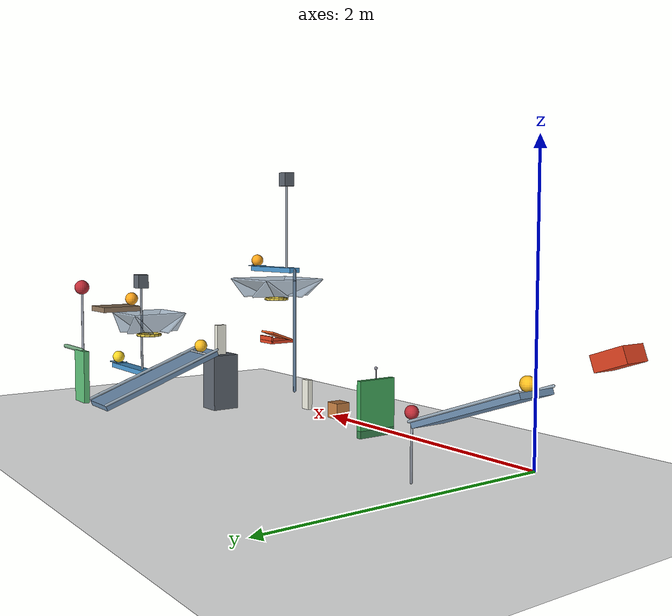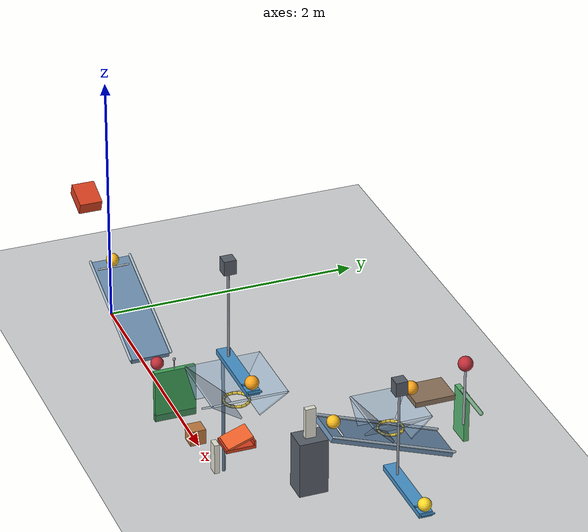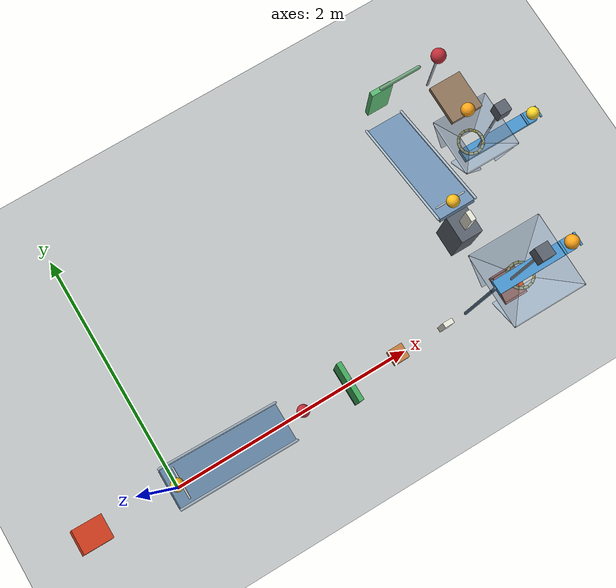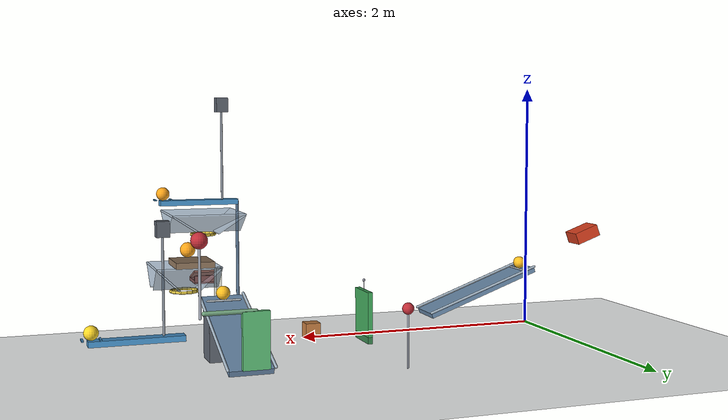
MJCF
<mujoco model="passive_chain_reaction">
  <compiler angle="degree" autolimits="true"/>
  <option timestep="0.002" gravity="0 0 -9.81" integrator="implicitfast" solver="Newton" iterations="100" cone="elliptic"/>
  <size njmax="4000" nconmax="1000"/>
  <visual>
    <global azimuth="120" elevation="-25"/>
    <headlight ambient="0.35 0.35 0.35" diffuse="0.7 0.7 0.7" specular="0.2 0.2 0.2"/>
  </visual>

  <!-- Contact damping ratio 0.6901 targets approximately 0.05 restitution. -->
  <!-- Collision bit 1 is for floors/supports; bit 2 is for mechanisms. -->
  <!-- Free objects use both bits. Hinged mechanisms do not hit the floor. -->

  <worldbody>
    <light name="main_light" pos="2 -3 6" dir="0 0.3 -1" directional="true"/>
    <camera name="overview" pos="2 -6 4" xyaxes="1 0 0 0 0.447214 0.894427" fovy="48"/>
    <geom name="floor" type="plane" size="6 6 0.1" friction="0.68 0.005 0.001" condim="6" solref="0.006 0.6901" contype="1" conaffinity="1" rgba="0.22 0.25 0.28 1"/>

    <!-- Cart1's slide slopes down 20 degrees. Gravity permits travel beyond
         the 0.40 m undamped excursion of a horizontal compressed spring. -->
    <body name="cart1" pos="-0.556111 0 0.747637" quat="0.984807753 0 0.173648178 0">
      <joint name="cart1_slide" type="slide" axis="1 0 0" damping="0.20" stiffness="18" springref="0.20" range="0 0.55" solreflimit="0.006 1"/>
      <geom name="cart1_box" type="box" size="0.11 0.09 0.05" mass="0.50" friction="0.68 0.005 0.001" condim="6" solref="0.006 0.6901" contype="3" conaffinity="3" rgba="0.85 0.25 0.12 1"/>
    </body>

    <body name="ball1" pos="0.064086 0 0.521904">
      <freejoint name="ball1_free"/>
      <geom name="ball1_sphere" type="sphere" size="0.05" mass="0.20" friction="0.68 0.005 0.001" condim="6" solref="0.006 0.6901" contype="3" conaffinity="3" rgba="1 0.75 0.12 1"/>
    </body>

    <!-- Ramp top endpoints: (0,0,0.492020) and (0.939693,0,0.150000). -->
    <body name="ramp1" pos="0.463006 0 0.302216" quat="0.984807753 0 0.173648178 0">
      <geom name="ramp1_deck" type="box" size="0.50 0.15 0.02" friction="0.68 0.005 0.001" condim="6" solref="0.006 0.6901" contype="1" conaffinity="1" rgba="0.42 0.55 0.68 1"/>
      <geom name="ramp1_left_rail" type="capsule" fromto="-0.50 -0.16 0.03 0.50 -0.16 0.03" size="0.01" friction="0.68 0.005 0.001" condim="6" solref="0.006 0.6901" contype="1" conaffinity="1" rgba="0.65 0.72 0.78 1"/>
      <geom name="ramp1_right_rail" type="capsule" fromto="-0.50 0.16 0.03 0.50 0.16 0.03" size="0.01" friction="0.68 0.005 0.001" condim="6" solref="0.006 0.6901" contype="1" conaffinity="1" rgba="0.65 0.72 0.78 1"/>
      <geom name="ramp1_start_lip" type="capsule" fromto="-0.41 -0.12 0.03 -0.41 0.12 0.03" size="0.007" friction="0.68 0.005 0.001" condim="6" solref="0.006 0.6901" contype="1" conaffinity="1" rgba="0.75 0.78 0.80 1"/>
    </body>

    <!-- Inverted rigid pendulum: disturbance releases gravitational energy. -->
    <body name="pendulum1" pos="1.089693 0 -0.32">
      <joint name="pendulum1_hinge" type="hinge" axis="0 1 0" damping="0.04" frictionloss="0.001" range="0 40" solreflimit="0.006 1"/>
      <geom name="pendulum1_rod" type="capsule" fromto="0 0 0 0 0 0.50" size="0.009" mass="0.05" friction="0.68 0.005 0.001" condim="6" solref="0.006 0.6901" contype="2" conaffinity="2" rgba="0.65 0.67 0.72 1"/>
      <geom name="pendulum1_bob" type="sphere" pos="0 0 0.50" size="0.05" mass="0.30" friction="0.68 0.005 0.001" condim="6" solref="0.006 0.6901" contype="2" conaffinity="2" rgba="0.75 0.18 0.22 1"/>
    </body>

    <body name="door1" pos="1.48 0 -0.06">
      <joint name="door1_hinge" type="hinge" axis="0 1 0" damping="0.04" frictionloss="0.01" range="0 70" solreflimit="0.006 1"/>
      <geom name="door1_panel" type="box" pos="0 0 0.21" size="0.02 0.16 0.21" mass="0.45" friction="0.68 0.005 0.001" condim="6" solref="0.006 0.6901" contype="2" conaffinity="2" rgba="0.25 0.65 0.35 1"/>
      <site name="door1_spring_attachment" pos="0 0 0.20" size="0.004" rgba="0.9 0.9 0.9 1"/>
    </body>

    <body name="door1_spring_anchor" pos="1.48 0 0.44">
      <site name="door1_spring_fixed" pos="0 0 0" size="0.004" rgba="0.9 0.9 0.9 1"/>
      <geom name="door1_spring_anchor_visual" type="sphere" size="0.012" contype="0" conaffinity="0" rgba="0.55 0.55 0.60 1"/>
    </body>

    <body name="block1" pos="1.93 0 0.06">
      <freejoint name="block1_free"/>
      <geom name="block1_cube" type="box" size="0.06 0.06 0.06" mass="0.35" friction="0.68 0.005 0.001" condim="6" solref="0.006 0.6901" contype="3" conaffinity="3" rgba="0.75 0.48 0.25 1"/>
    </body>

    <body name="domino1" pos="2.35 0 0.12">
      <freejoint name="domino1_free"/>
      <geom name="domino1_box" type="box" size="0.04 0.02 0.12" mass="0.25" friction="0.68 0.005 0.001" condim="6" solref="0.006 0.6901" contype="3" conaffinity="3" rgba="0.90 0.90 0.85 1"/>
    </body>

    <!-- The elevated lever has a low striker at its left end and a balanced
         over-centre weight. Its complete moving assembly has mass 0.50 kg. -->
    <body name="lever1" pos="2.83 0 1.12">
      <inertial pos="-0.11 0 0.45" mass="0.50" diaginertia="0.070 0.078 0.010"/>
      <joint name="lever1_hinge" type="hinge" axis="0 -1 0" damping="0.04" frictionloss="0.03" range="0 45" solreflimit="0.006 1"/>
      <geom name="lever1_beam" type="box" size="0.30 0.05 0.02" friction="0.68 0.005 0.001" condim="6" solref="0.006 0.6901" contype="2" conaffinity="2" rgba="0.28 0.58 0.80 1"/>
      <geom name="lever1_low_striker" type="capsule" fromto="-0.30 0 -1.00 -0.30 0 0" size="0.012" friction="0.68 0.005 0.001" condim="6" solref="0.006 0.6901" contype="2" conaffinity="2" rgba="0.35 0.45 0.55 1"/>
      <geom name="lever1_weight_stem" type="capsule" fromto="-0.183333 0 0 -0.183333 0 0.75" size="0.009" contype="0" conaffinity="0" rgba="0.55 0.58 0.62 1"/>
      <geom name="lever1_balance_weight" type="box" pos="-0.183333 0 0.75" size="0.045 0.045 0.055" contype="0" conaffinity="0" rgba="0.35 0.38 0.42 1"/>
      <geom name="lever1_cup_left" type="box" pos="0.215 0 0.024" size="0.0075 0.05 0.004" friction="0.68 0.005 0.001" condim="6" solref="0.006 0.6901" contype="2" conaffinity="2" rgba="0.28 0.58 0.80 1"/>
      <geom name="lever1_cup_right" type="box" pos="0.335 0 0.024" size="0.0075 0.05 0.004" friction="0.68 0.005 0.001" condim="6" solref="0.006 0.6901" contype="2" conaffinity="2" rgba="0.28 0.58 0.80 1"/>
    </body>

    <body name="ball2" pos="3.105 0 1.19">
      <freejoint name="ball2_free"/>
      <geom name="ball2_sphere" type="sphere" size="0.05" mass="0.20" friction="0.68 0.005 0.001" condim="6" solref="0.006 0.6901" contype="3" conaffinity="3" rgba="1 0.65 0.10 1"/>
    </body>

    <!-- Passive catch funnel; its exit is above the horizontal ring. -->
    <body name="ball2_funnel" pos="2.80 0 0.97">
      <geom name="ball2_funnel_px" type="box" pos="0.1725 0 0" euler="0 -33.073 0" size="0.12828 0.28 0.006" friction="0.68 0.005 0.001" condim="6" solref="0.006 0.6901" contype="1" conaffinity="1" rgba="0.48 0.58 0.68 0.65"/>
      <geom name="ball2_funnel_nx" type="box" pos="-0.1725 0 0" euler="0 33.073 0" size="0.12828 0.28 0.006" friction="0.68 0.005 0.001" condim="6" solref="0.006 0.6901" contype="1" conaffinity="1" rgba="0.48 0.58 0.68 0.65"/>
      <geom name="ball2_funnel_py" type="box" pos="0 0.1725 0" euler="33.073 0 0" size="0.28 0.12828 0.006" friction="0.68 0.005 0.001" condim="6" solref="0.006 0.6901" contype="1" conaffinity="1" rgba="0.48 0.58 0.68 0.65"/>
      <geom name="ball2_funnel_ny" type="box" pos="0 -0.1725 0" euler="-33.073 0 0" size="0.28 0.12828 0.006" friction="0.68 0.005 0.001" condim="6" solref="0.006 0.6901" contype="1" conaffinity="1" rgba="0.48 0.58 0.68 0.65"/>
    </body>

    <!-- Sixteen capsule segments have an inner apothem of 0.08 m. -->
    <body name="ring1" pos="2.80 0 0.87">
      <geom name="ring1_s00" type="capsule" fromto="0.091765 0 0 0.084780 0.035116 0" size="0.01" friction="0.68 0.005 0.001" condim="6" solref="0.006 0.6901" contype="1" conaffinity="1" rgba="0.85 0.75 0.25 1"/>
      <geom name="ring1_s01" type="capsule" fromto="0.084780 0.035116 0 0.064888 0.064888 0" size="0.01" friction="0.68 0.005 0.001" condim="6" solref="0.006 0.6901" contype="1" conaffinity="1" rgba="0.85 0.75 0.25 1"/>
      <geom name="ring1_s02" type="capsule" fromto="0.064888 0.064888 0 0.035116 0.084780 0" size="0.01" friction="0.68 0.005 0.001" condim="6" solref="0.006 0.6901" contype="1" conaffinity="1" rgba="0.85 0.75 0.25 1"/>
      <geom name="ring1_s03" type="capsule" fromto="0.035116 0.084780 0 0 0.091765 0" size="0.01" friction="0.68 0.005 0.001" condim="6" solref="0.006 0.6901" contype="1" conaffinity="1" rgba="0.85 0.75 0.25 1"/>
      <geom name="ring1_s04" type="capsule" fromto="0 0.091765 0 -0.035116 0.084780 0" size="0.01" friction="0.68 0.005 0.001" condim="6" solref="0.006 0.6901" contype="1" conaffinity="1" rgba="0.85 0.75 0.25 1"/>
      <geom name="ring1_s05" type="capsule" fromto="-0.035116 0.084780 0 -0.064888 0.064888 0" size="0.01" friction="0.68 0.005 0.001" condim="6" solref="0.006 0.6901" contype="1" conaffinity="1" rgba="0.85 0.75 0.25 1"/>
      <geom name="ring1_s06" type="capsule" fromto="-0.064888 0.064888 0 -0.084780 0.035116 0" size="0.01" friction="0.68 0.005 0.001" condim="6" solref="0.006 0.6901" contype="1" conaffinity="1" rgba="0.85 0.75 0.25 1"/>
      <geom name="ring1_s07" type="capsule" fromto="-0.084780 0.035116 0 -0.091765 0 0" size="0.01" friction="0.68 0.005 0.001" condim="6" solref="0.006 0.6901" contype="1" conaffinity="1" rgba="0.85 0.75 0.25 1"/>
      <geom name="ring1_s08" type="capsule" fromto="-0.091765 0 0 -0.084780 -0.035116 0" size="0.01" friction="0.68 0.005 0.001" condim="6" solref="0.006 0.6901" contype="1" conaffinity="1" rgba="0.85 0.75 0.25 1"/>
      <geom name="ring1_s09" type="capsule" fromto="-0.084780 -0.035116 0 -0.064888 -0.064888 0" size="0.01" friction="0.68 0.005 0.001" condim="6" solref="0.006 0.6901" contype="1" conaffinity="1" rgba="0.85 0.75 0.25 1"/>
      <geom name="ring1_s10" type="capsule" fromto="-0.064888 -0.064888 0 -0.035116 -0.084780 0" size="0.01" friction="0.68 0.005 0.001" condim="6" solref="0.006 0.6901" contype="1" conaffinity="1" rgba="0.85 0.75 0.25 1"/>
      <geom name="ring1_s11" type="capsule" fromto="-0.035116 -0.084780 0 0 -0.091765 0" size="0.01" friction="0.68 0.005 0.001" condim="6" solref="0.006 0.6901" contype="1" conaffinity="1" rgba="0.85 0.75 0.25 1"/>
      <geom name="ring1_s12" type="capsule" fromto="0 -0.091765 0 0.035116 -0.084780 0" size="0.01" friction="0.68 0.005 0.001" condim="6" solref="0.006 0.6901" contype="1" conaffinity="1" rgba="0.85 0.75 0.25 1"/>
      <geom name="ring1_s13" type="capsule" fromto="0.035116 -0.084780 0 0.064888 -0.064888 0" size="0.01" friction="0.68 0.005 0.001" condim="6" solref="0.006 0.6901" contype="1" conaffinity="1" rgba="0.85 0.75 0.25 1"/>
      <geom name="ring1_s14" type="capsule" fromto="0.064888 -0.064888 0 0.084780 -0.035116 0" size="0.01" friction="0.68 0.005 0.001" condim="6" solref="0.006 0.6901" contype="1" conaffinity="1" rgba="0.85 0.75 0.25 1"/>
      <geom name="ring1_s15" type="capsule" fromto="0.084780 -0.035116 0 0.091765 0 0" size="0.01" friction="0.68 0.005 0.001" condim="6" solref="0.006 0.6901" contype="1" conaffinity="1" rgba="0.85 0.75 0.25 1"/>
    </body>

    <!-- The inclined cart top converts the vertical impact into +y motion.
         Its overall envelope is 0.22 x 0.18 x 0.10 m in local coordinates. -->
    <body name="cart2" pos="2.80 0 0.55006" quat="0.707106781 0 0 0.707106781">
      <inertial pos="0 0 0" mass="0.50" diaginertia="0.001767 0.002433 0.003367"/>
      <joint name="cart2_slide" type="slide" axis="1 0 0" damping="0.20" range="0 0.46" solreflimit="0.006 1"/>
      <geom name="cart2_base" type="box" pos="0 0 -0.0375" size="0.11 0.09 0.0125" friction="0.68 0.005 0.001" condim="6" solref="0.006 0.6901" contype="3" conaffinity="3" rgba="0.85 0.25 0.12 1"/>
      <geom name="cart2_impact_top" type="box" pos="0 0 0.00875" euler="0 -20 0" size="0.10 0.09 0.0075" friction="0.68 0.005 0.001" condim="6" solref="0.006 0.6901" contype="3" conaffinity="3" rgba="0.95 0.38 0.16 1"/>
      <geom name="cart2_front" type="box" pos="0.1025 0 -0.015" size="0.0075 0.09 0.025" friction="0.68 0.005 0.001" condim="6" solref="0.006 0.6901" contype="3" conaffinity="3" rgba="0.85 0.25 0.12 1"/>
    </body>

    <body name="domino2_support" pos="2.80 0.55 0.22">
      <geom name="domino2_support_box" type="box" size="0.09 0.11 0.22" friction="0.68 0.005 0.001" condim="6" solref="0.006 0.6901" contype="1" conaffinity="1" rgba="0.35 0.38 0.42 1"/>
    </body>

    <body name="domino2" pos="2.80 0.55 0.56" quat="0.707106781 0 0 0.707106781">
      <freejoint name="domino2_free"/>
      <geom name="domino2_box" type="box" size="0.04 0.02 0.12" mass="0.25" friction="0.68 0.005 0.001" condim="6" solref="0.006 0.6901" contype="3" conaffinity="3" rgba="0.90 0.90 0.85 1"/>
    </body>

    <body name="ball3" pos="2.80 0.73 0.521904">
      <freejoint name="ball3_free"/>
      <geom name="ball3_sphere" type="sphere" size="0.05" mass="0.20" friction="0.68 0.005 0.001" condim="6" solref="0.006 0.6901" contype="3" conaffinity="3" rgba="1 0.75 0.12 1"/>
    </body>

    <body name="ramp2" pos="2.80 1.128920 0.302216" quat="0.696364240 -0.122787804 0.122787804 0.696364240">
      <geom name="ramp2_deck" type="box" size="0.50 0.15 0.02" friction="0.68 0.005 0.001" condim="6" solref="0.006 0.6901" contype="1" conaffinity="1" rgba="0.42 0.55 0.68 1"/>
      <geom name="ramp2_left_rail" type="capsule" fromto="-0.50 -0.16 0.03 0.50 -0.16 0.03" size="0.01" friction="0.68 0.005 0.001" condim="6" solref="0.006 0.6901" contype="1" conaffinity="1" rgba="0.65 0.72 0.78 1"/>
      <geom name="ramp2_right_rail" type="capsule" fromto="-0.50 0.16 0.03 0.50 0.16 0.03" size="0.01" friction="0.68 0.005 0.001" condim="6" solref="0.006 0.6901" contype="1" conaffinity="1" rgba="0.65 0.72 0.78 1"/>
      <geom name="ramp2_start_lip" type="capsule" fromto="-0.41 -0.12 0.03 -0.41 0.12 0.03" size="0.007" friction="0.68 0.005 0.001" condim="6" solref="0.006 0.6901" contype="1" conaffinity="1" rgba="0.75 0.78 0.80 1"/>
    </body>

    <body name="flap1" pos="2.80 1.725607 0.37">
      <inertial pos="0 0 0.035" mass="0.28" diaginertia="0.00345 0.00415 0.00080"/>
      <joint name="flap1_hinge" type="hinge" axis="1 0 0" damping="0.04" frictionloss="0.005" range="0 60" solreflimit="0.006 1"/>
      <geom name="flap1_panel" type="box" size="0.09 0.02 0.19" friction="0.68 0.005 0.001" condim="6" solref="0.006 0.6901" contype="2" conaffinity="2" rgba="0.35 0.72 0.45 1"/>
      <geom name="flap1_lateral_striker" type="capsule" fromto="0 0 0.19 0.33 0 0.19" size="0.015" friction="0.68 0.005 0.001" condim="6" solref="0.006 0.6901" contype="2" conaffinity="2" rgba="0.45 0.65 0.50 1"/>
    </body>

    <body name="pendulum2" pos="3.13 1.59 0.505995">
      <joint name="pendulum2_hinge" type="hinge" axis="1 0 0" damping="0.04" frictionloss="0.001" range="0 38" solreflimit="0.006 1"/>
      <geom name="pendulum2_rod" type="capsule" fromto="0 0 0 0 0 0.50" size="0.009" mass="0.05" friction="0.68 0.005 0.001" condim="6" solref="0.006 0.6901" contype="2" conaffinity="2" rgba="0.65 0.67 0.72 1"/>
      <geom name="pendulum2_bob" type="sphere" pos="0 0 0.50" size="0.055" mass="0.30" friction="0.68 0.005 0.001" condim="6" solref="0.006 0.6901" contype="2" conaffinity="2" rgba="0.75 0.18 0.22 1"/>
    </body>

    <body name="shelf1" pos="3.13 1.312169 0.83">
      <geom name="shelf1_deck" type="box" size="0.125 0.15 0.02" friction="0.68 0.005 0.001" condim="6" solref="0.006 0.6901" contype="1" conaffinity="1" rgba="0.55 0.45 0.35 1"/>
    </body>

    <body name="ball4" pos="3.13 1.177169 0.90">
      <freejoint name="ball4_free"/>
      <geom name="ball4_sphere" type="sphere" size="0.05" mass="0.20" friction="0.68 0.005 0.001" condim="6" solref="0.006 0.6901" contype="3" conaffinity="3" rgba="1 0.65 0.10 1"/>
    </body>

    <body name="ball4_funnel" pos="3.13 1.027169 0.705">
      <geom name="ball4_funnel_px" type="box" pos="0.1425 0 0" euler="0 -44.061 0" size="0.10785 0.22 0.006" friction="0.68 0.005 0.001" condim="6" solref="0.006 0.6901" contype="1" conaffinity="1" rgba="0.48 0.58 0.68 0.65"/>
      <geom name="ball4_funnel_nx" type="box" pos="-0.1425 0 0" euler="0 44.061 0" size="0.10785 0.22 0.006" friction="0.68 0.005 0.001" condim="6" solref="0.006 0.6901" contype="1" conaffinity="1" rgba="0.48 0.58 0.68 0.65"/>
      <geom name="ball4_funnel_py" type="box" pos="0 0.1425 0" euler="44.061 0 0" size="0.22 0.10785 0.006" friction="0.68 0.005 0.001" condim="6" solref="0.006 0.6901" contype="1" conaffinity="1" rgba="0.48 0.58 0.68 0.65"/>
      <geom name="ball4_funnel_ny" type="box" pos="0 -0.1425 0" euler="-44.061 0 0" size="0.22 0.10785 0.006" friction="0.68 0.005 0.001" condim="6" solref="0.006 0.6901" contype="1" conaffinity="1" rgba="0.48 0.58 0.68 0.65"/>
    </body>

    <body name="ring2" pos="3.13 1.027169 0.60">
      <geom name="ring2_s00" type="capsule" fromto="0.091765 0 0 0.084780 0.035116 0" size="0.01" friction="0.68 0.005 0.001" condim="6" solref="0.006 0.6901" contype="1" conaffinity="1" rgba="0.85 0.75 0.25 1"/>
      <geom name="ring2_s01" type="capsule" fromto="0.084780 0.035116 0 0.064888 0.064888 0" size="0.01" friction="0.68 0.005 0.001" condim="6" solref="0.006 0.6901" contype="1" conaffinity="1" rgba="0.85 0.75 0.25 1"/>
      <geom name="ring2_s02" type="capsule" fromto="0.064888 0.064888 0 0.035116 0.084780 0" size="0.01" friction="0.68 0.005 0.001" condim="6" solref="0.006 0.6901" contype="1" conaffinity="1" rgba="0.85 0.75 0.25 1"/>
      <geom name="ring2_s03" type="capsule" fromto="0.035116 0.084780 0 0 0.091765 0" size="0.01" friction="0.68 0.005 0.001" condim="6" solref="0.006 0.6901" contype="1" conaffinity="1" rgba="0.85 0.75 0.25 1"/>
      <geom name="ring2_s04" type="capsule" fromto="0 0.091765 0 -0.035116 0.084780 0" size="0.01" friction="0.68 0.005 0.001" condim="6" solref="0.006 0.6901" contype="1" conaffinity="1" rgba="0.85 0.75 0.25 1"/>
      <geom name="ring2_s05" type="capsule" fromto="-0.035116 0.084780 0 -0.064888 0.064888 0" size="0.01" friction="0.68 0.005 0.001" condim="6" solref="0.006 0.6901" contype="1" conaffinity="1" rgba="0.85 0.75 0.25 1"/>
      <geom name="ring2_s06" type="capsule" fromto="-0.064888 0.064888 0 -0.084780 0.035116 0" size="0.01" friction="0.68 0.005 0.001" condim="6" solref="0.006 0.6901" contype="1" conaffinity="1" rgba="0.85 0.75 0.25 1"/>
      <geom name="ring2_s07" type="capsule" fromto="-0.084780 0.035116 0 -0.091765 0 0" size="0.01" friction="0.68 0.005 0.001" condim="6" solref="0.006 0.6901" contype="1" conaffinity="1" rgba="0.85 0.75 0.25 1"/>
      <geom name="ring2_s08" type="capsule" fromto="-0.091765 0 0 -0.084780 -0.035116 0" size="0.01" friction="0.68 0.005 0.001" condim="6" solref="0.006 0.6901" contype="1" conaffinity="1" rgba="0.85 0.75 0.25 1"/>
      <geom name="ring2_s09" type="capsule" fromto="-0.084780 -0.035116 0 -0.064888 -0.064888 0" size="0.01" friction="0.68 0.005 0.001" condim="6" solref="0.006 0.6901" contype="1" conaffinity="1" rgba="0.85 0.75 0.25 1"/>
      <geom name="ring2_s10" type="capsule" fromto="-0.064888 -0.064888 0 -0.035116 -0.084780 0" size="0.01" friction="0.68 0.005 0.001" condim="6" solref="0.006 0.6901" contype="1" conaffinity="1" rgba="0.85 0.75 0.25 1"/>
      <geom name="ring2_s11" type="capsule" fromto="-0.035116 -0.084780 0 0 -0.091765 0" size="0.01" friction="0.68 0.005 0.001" condim="6" solref="0.006 0.6901" contype="1" conaffinity="1" rgba="0.85 0.75 0.25 1"/>
      <geom name="ring2_s12" type="capsule" fromto="0 -0.091765 0 0.035116 -0.084780 0" size="0.01" friction="0.68 0.005 0.001" condim="6" solref="0.006 0.6901" contype="1" conaffinity="1" rgba="0.85 0.75 0.25 1"/>
      <geom name="ring2_s13" type="capsule" fromto="0.035116 -0.084780 0 0.064888 -0.064888 0" size="0.01" friction="0.68 0.005 0.001" condim="6" solref="0.006 0.6901" contype="1" conaffinity="1" rgba="0.85 0.75 0.25 1"/>
      <geom name="ring2_s14" type="capsule" fromto="0.064888 -0.064888 0 0.084780 -0.035116 0" size="0.01" friction="0.68 0.005 0.001" condim="6" solref="0.006 0.6901" contype="1" conaffinity="1" rgba="0.85 0.75 0.25 1"/>
      <geom name="ring2_s15" type="capsule" fromto="0.084780 -0.035116 0 0.091765 0 0" size="0.01" friction="0.68 0.005 0.001" condim="6" solref="0.006 0.6901" contype="1" conaffinity="1" rgba="0.85 0.75 0.25 1"/>
    </body>

    <body name="seesaw1" pos="3.455 1.027169 0.28">
      <inertial pos="-0.109090909 0 0.45" mass="0.55" diaginertia="0.075 0.085 0.012"/>
      <joint name="seesaw1_hinge" type="hinge" axis="0 -1 0" damping="0.04" frictionloss="0.03" range="0 42" solreflimit="0.006 1"/>
      <geom name="seesaw1_beam" type="box" size="0.325 0.05 0.02" friction="0.68 0.005 0.001" condim="6" solref="0.006 0.6901" contype="2" conaffinity="2" rgba="0.28 0.58 0.80 1"/>
      <geom name="seesaw1_weight_stem" type="capsule" fromto="-0.181818 0 0 -0.181818 0 0.75" size="0.009" contype="0" conaffinity="0" rgba="0.55 0.58 0.62 1"/>
      <geom name="seesaw1_balance_weight" type="box" pos="-0.181818 0 0.75" size="0.045 0.045 0.055" contype="0" conaffinity="0" rgba="0.35 0.38 0.42 1"/>
      <geom name="seesaw1_cup_left" type="box" pos="0.24 0 0.024" size="0.0075 0.05 0.004" friction="0.68 0.005 0.001" condim="6" solref="0.006 0.6901" contype="2" conaffinity="2" rgba="0.28 0.58 0.80 1"/>
      <geom name="seesaw1_cup_right" type="box" pos="0.36 0 0.024" size="0.0075 0.05 0.004" friction="0.68 0.005 0.001" condim="6" solref="0.006 0.6901" contype="2" conaffinity="2" rgba="0.28 0.58 0.80 1"/>
    </body>

    <body name="ball5" pos="3.755 1.027169 0.35">
      <freejoint name="ball5_free"/>
      <geom name="ball5_sphere" type="sphere" size="0.05" mass="0.20" friction="0.68 0.005 0.001" condim="6" solref="0.006 0.6901" contype="3" conaffinity="3" rgba="1 0.85 0.15 1"/>
    </body>
  </worldbody>

  <!-- Compressed over-centre spring: zero initial door torque, released
       after pendulum1 displaces the door from its upright position. -->
  <tendon>
    <spatial name="door1_assist_spring" stiffness="180" damping="0" springlength="0.55" width="0.004" rgba="0.65 0.65 0.70 1">
      <site site="door1_spring_fixed"/>
      <site site="door1_spring_attachment"/>
    </spatial>
  </tendon>

  <!-- Unspecified keyframe qpos uses model qpos0; unspecified qvel is zero. -->
  <keyframe>
    <key name="start" time="0"/>
  </keyframe>
</mujoco>
